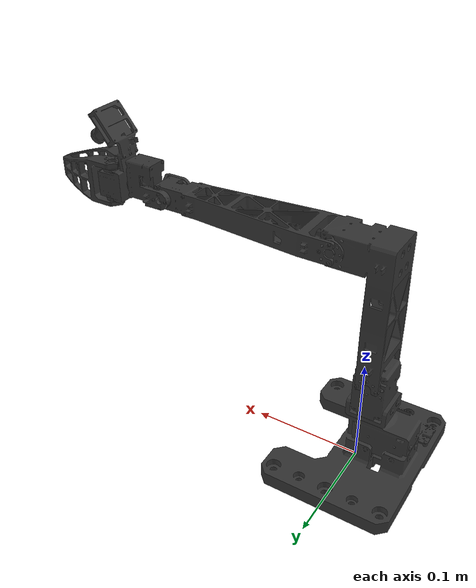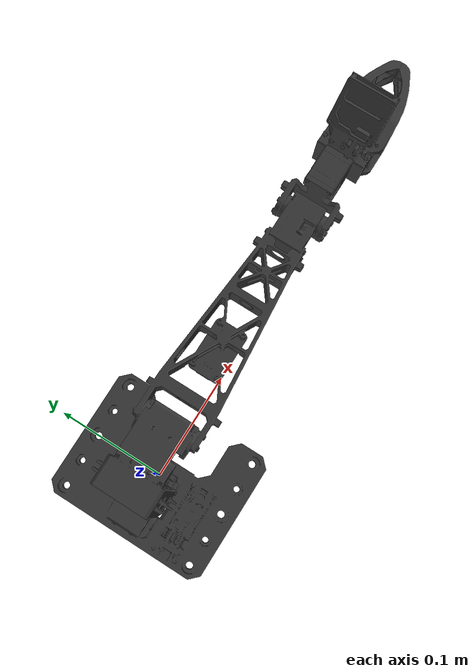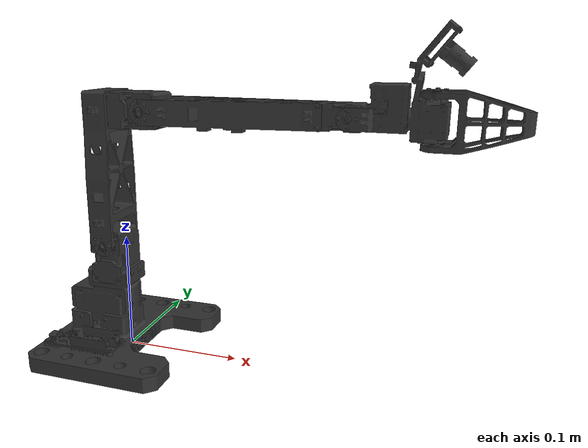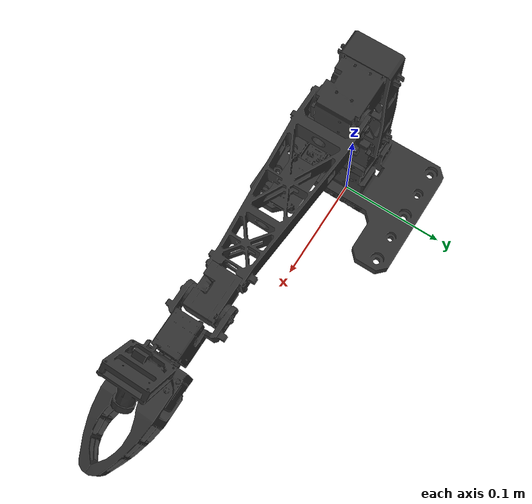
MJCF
<mujoco model="omx_f">
  <compiler angle="radian"/>

  <asset>
    <mesh name="follower_01_base" content_type="model/stl" file="urdf/omx_f/follower_01_base.stl" scale="0.001 0.001 0.001"/>
    <mesh name="follower_02_base_tilt_Revised" content_type="model/stl" file="urdf/omx_f/follower_02_base_tilt_Revised.stl" scale="0.001 0.001 0.001"/>
    <mesh name="follower_03_middle_verticle" content_type="model/stl" file="urdf/omx_f/follower_03_middle_verticle.stl" scale="0.001 0.001 0.001"/>
    <mesh name="follower_04_middle_horizontal" content_type="model/stl" file="urdf/omx_f/follower_04_middle_horizontal.stl" scale="0.001 0.001 0.001"/>
    <mesh name="follower_05_tip" content_type="model/stl" file="urdf/omx_f/follower_05_tip.stl" scale="0.001 0.001 0.001"/>
    <mesh name="follower_06_pan_Revised" content_type="model/stl" file="urdf/omx_f/follower_06_pan_Revised.stl" scale="0.001 0.001 0.001"/>
    <mesh name="follower_07_gripper_motorized" content_type="model/stl" file="urdf/omx_f/follower_07_gripper_motorized.stl" scale="0.001 0.001 0.001"/>
    <mesh name="follower_08_gripper_gear" content_type="model/stl" file="urdf/omx_f/follower_08_gripper_gear.stl" scale="0.001 0.001 0.001"/>
  </asset>

  <worldbody>
    <geom type="mesh" rgba="0.2 0.2 0.2 1" mesh="follower_01_base"/>
    <body name="link1" pos="-0.01125 0 0.034">
      <inertial pos="-6.22362e-06 0.000604923 0.0474188" quat="0.999751 -0.0195068 -0.000523577 -0.0108265" mass="0.065987" diaginertia="2.17318e-05 2.13661e-05 1.16432e-05"/>
      <joint name="joint1" pos="0 0 0" axis="0 0 1" range="-6.28319 6.28319" actuatorfrcrange="-1000 1000" damping="0.05"/>
      <geom type="mesh" rgba="0.2 0.2 0.2 1" mesh="follower_02_base_tilt_Revised"/>
      <body name="link2" pos="0 0 0.0635">
        <inertial pos="0.0180899 0.000297788 0.0990055" quat="0.687559 0.105106 0.119393 0.708492" mass="0.0872215" diaginertia="0.000120923 0.000110522 3.4491e-05"/>
        <joint name="joint2" pos="0 0 0" axis="0 1 0" range="-6.28319 6.28319" actuatorfrcrange="-1000 1000" damping="0.1"/>
        <geom type="mesh" rgba="0.2 0.2 0.2 1" mesh="follower_03_middle_verticle"/>
        <body name="link3" pos="0.0415 0 0.11315">
          <inertial pos="0.0873986 0.000413101 -0.00358292" quat="0.0308724 0.692831 0.0315908 0.719746" mass="0.0837591" diaginertia="0.000231019 0.000226024 1.48898e-05"/>
          <joint name="joint3" pos="0 0 0" axis="0 1 0" range="-6.28319 6.28319" actuatorfrcrange="-1000 1000" damping="0.1"/>
          <geom type="mesh" rgba="0.2 0.2 0.2 1" mesh="follower_04_middle_horizontal"/>
          <body name="link4" pos="0.162 0 0">
            <inertial pos="0.023235 6.77354e-05 0.00597613" quat="0.608881 0.373182 0.376257 0.590279" mass="0.0299751" diaginertia="7.09955e-06 6.69023e-06 4.72073e-06"/>
            <joint name="joint4" pos="0 0 0" axis="0 1 0" range="-6.28319 6.28319" actuatorfrcrange="-1000 1000" damping="0.1"/>
            <geom type="mesh" rgba="0.2 0.2 0.2 1" mesh="follower_05_tip"/>
            <body name="link5" pos="0.0287 0 0">
              <inertial pos="0.0280724 2.41359e-05 0.0135289" quat="0.996143 0.000396881 0.0854137 -0.0200656" mass="0.0438109" diaginertia="2.42036e-05 2.32357e-05 6.67277e-06"/>
              <joint name="joint5" pos="0 0 0" axis="1 0 0" range="-6.28319 6.28319" actuatorfrcrange="-1000 1000" damping="0.1"/>
              <geom type="mesh" rgba="0.2 0.2 0.2 1" mesh="follower_06_pan_Revised"/>
              <body name="link6" pos="0.0295 0.0075 0">
                <inertial pos="0.0161646 0.0012731 0.000272916" quat="0.498852 0.517636 0.496678 0.486324" mass="0.0120907" diaginertia="6.87819e-06 4.69576e-06 2.70194e-06"/>
                <joint name="gripper_joint_1" pos="0 0 0" axis="0 0 1" range="-6.28319 6.28319" actuatorfrcrange="-1000 1000" damping="0.1"/>
                <geom type="mesh" rgba="0.2 0.2 0.2 1" mesh="follower_07_gripper_motorized"/>
              </body>
              <body name="link7" pos="0.0295 -0.0108 0">
                <inertial pos="0.0161646 0.0012731 0.000272916" quat="0.498852 0.517636 0.496678 0.486324" mass="0.0120907" diaginertia="6.87819e-06 4.69576e-06 2.70194e-06"/>
                <joint name="gripper_joint_2" pos="0 0 0" axis="0 0 1" range="-6.28319 6.28319" actuatorfrcrange="-1000 1000" damping="0.1"/>
                <geom type="mesh" rgba="0.2 0.2 0.2 1" mesh="follower_08_gripper_gear"/>
              </body>
            </body>
          </body>
        </body>
      </body>
    </body>
  </worldbody>
</mujoco>
